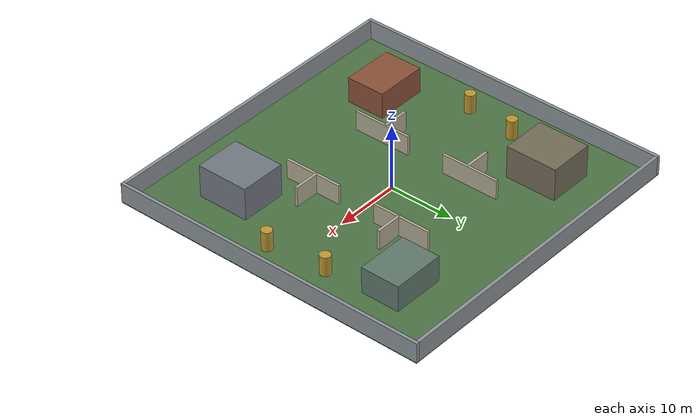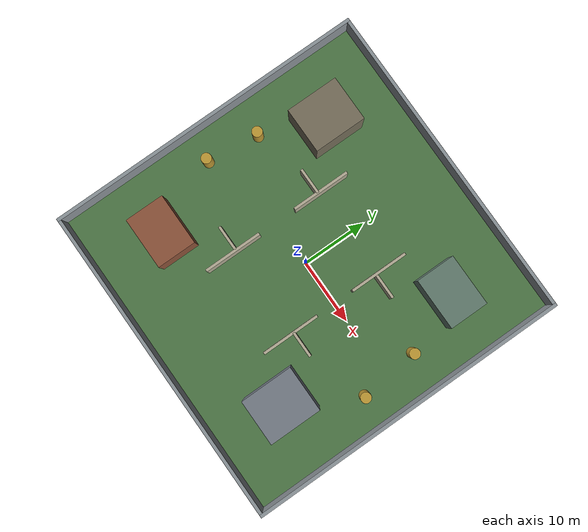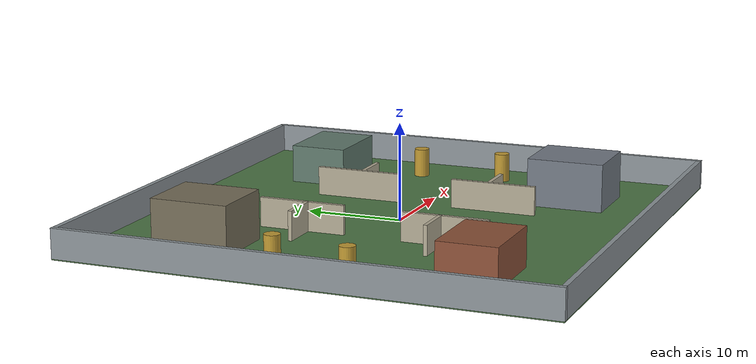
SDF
<?xml version="1.0"?>
<sdf version="1.6">
  <world name="two_uav_outdoor_50x50_v1">
    <gravity>0 0 -9.8066</gravity>
    <physics name="ode_1000hz" type="ode">
      <max_step_size>0.001</max_step_size>
      <real_time_factor>1.0</real_time_factor>
      <real_time_update_rate>1000</real_time_update_rate>
    </physics>
    <scene>
      <ambient>0.55 0.60 0.65 1</ambient>
      <background>0.70 0.82 0.95 1</background>
      <shadows>true</shadows>
      <sky><clouds><speed>0.2</speed></clouds></sky>
    </scene>
    <light name="sun" type="directional">
      <cast_shadows>true</cast_shadows>
      <pose>0 0 30 0 0 0</pose>
      <diffuse>0.9 0.88 0.82 1</diffuse>
      <specular>0.25 0.25 0.25 1</specular>
      <direction>-0.4 0.2 -0.9</direction>
    </light>

    <!-- 50 m x 50 m grass/concrete test pad. -->
    <model name="ground_50x50">
      <static>true</static>
      <link name="ground_link">
        <pose>0 0 -0.05 0 0 0</pose>
        <collision name="ground_collision">
          <geometry><box><size>50 50 0.1</size></box></geometry>
          <surface><friction><ode><mu>1.0</mu><mu2>1.0</mu2></ode></friction></surface>
        </collision>
        <visual name="ground_visual">
          <geometry><box><size>50 50 0.1</size></box></geometry>
          <material>
            <ambient>0.22 0.34 0.20 1</ambient>
            <diffuse>0.30 0.46 0.27 1</diffuse>
          </material>
        </visual>
      </link>
    </model>

    <!-- Closed 3 m perimeter; inner faces lie at +/-24.5 m. -->
    <model name="boundary_west"><static>true</static><pose>-24.75 0 1.5 0 0 0</pose><link name="link"><collision name="collision"><geometry><box><size>0.5 50 3</size></box></geometry></collision><visual name="visual"><geometry><box><size>0.5 50 3</size></box></geometry><material><diffuse>0.55 0.58 0.60 1</diffuse></material></visual></link></model>
    <model name="boundary_east"><static>true</static><pose>24.75 0 1.5 0 0 0</pose><link name="link"><collision name="collision"><geometry><box><size>0.5 50 3</size></box></geometry></collision><visual name="visual"><geometry><box><size>0.5 50 3</size></box></geometry><material><diffuse>0.55 0.58 0.60 1</diffuse></material></visual></link></model>
    <model name="boundary_south"><static>true</static><pose>0 -24.75 1.5 0 0 0</pose><link name="link"><collision name="collision"><geometry><box><size>49 0.5 3</size></box></geometry></collision><visual name="visual"><geometry><box><size>49 0.5 3</size></box></geometry><material><diffuse>0.55 0.58 0.60 1</diffuse></material></visual></link></model>
    <model name="boundary_north"><static>true</static><pose>0 24.75 1.5 0 0 0</pose><link name="link"><collision name="collision"><geometry><box><size>49 0.5 3</size></box></geometry></collision><visual name="visual"><geometry><box><size>49 0.5 3</size></box></geometry><material><diffuse>0.55 0.58 0.60 1</diffuse></material></visual></link></model>

    <!-- Four building-like blocks leave broad exterior lanes. -->
    <model name="building_sw"><static>true</static><pose>-15 -14 2.0 0 0 0</pose><link name="link"><collision name="collision"><geometry><box><size>8 6 4</size></box></geometry></collision><visual name="visual"><geometry><box><size>8 6 4</size></box></geometry><material><diffuse>0.55 0.32 0.22 1</diffuse></material></visual></link></model>
    <model name="building_se"><static>true</static><pose>14 -14 2.5 0 0 0</pose><link name="link"><collision name="collision"><geometry><box><size>7 8 5</size></box></geometry></collision><visual name="visual"><geometry><box><size>7 8 5</size></box></geometry><material><diffuse>0.45 0.48 0.52 1</diffuse></material></visual></link></model>
    <model name="building_nw"><static>true</static><pose>-15 14 2.5 0 0 0</pose><link name="link"><collision name="collision"><geometry><box><size>7 8 5</size></box></geometry></collision><visual name="visual"><geometry><box><size>7 8 5</size></box></geometry><material><diffuse>0.46 0.43 0.35 1</diffuse></material></visual></link></model>
    <model name="building_ne"><static>true</static><pose>15 14 2.0 0 0 0</pose><link name="link"><collision name="collision"><geometry><box><size>8 6 4</size></box></geometry></collision><visual name="visual"><geometry><box><size>8 6 4</size></box></geometry><material><diffuse>0.38 0.48 0.43 1</diffuse></material></visual></link></model>

    <!-- Split walls create gates and force cooperative route allocation. -->
    <model name="wall_west_upper"><static>true</static><pose>-7 7.5 1.5 0 0 0</pose><link name="link"><collision name="collision"><geometry><box><size>0.4 9 3</size></box></geometry></collision><visual name="visual"><geometry><box><size>0.4 9 3</size></box></geometry><material><diffuse>0.70 0.67 0.58 1</diffuse></material></visual></link></model>
    <model name="wall_west_lower"><static>true</static><pose>-7 -7.5 1.5 0 0 0</pose><link name="link"><collision name="collision"><geometry><box><size>0.4 9 3</size></box></geometry></collision><visual name="visual"><geometry><box><size>0.4 9 3</size></box></geometry><material><diffuse>0.70 0.67 0.58 1</diffuse></material></visual></link></model>
    <model name="wall_east_upper"><static>true</static><pose>7 7.5 1.5 0 0 0</pose><link name="link"><collision name="collision"><geometry><box><size>0.4 9 3</size></box></geometry></collision><visual name="visual"><geometry><box><size>0.4 9 3</size></box></geometry><material><diffuse>0.70 0.67 0.58 1</diffuse></material></visual></link></model>
    <model name="wall_east_lower"><static>true</static><pose>7 -7.5 1.5 0 0 0</pose><link name="link"><collision name="collision"><geometry><box><size>0.4 9 3</size></box></geometry></collision><visual name="visual"><geometry><box><size>0.4 9 3</size></box></geometry><material><diffuse>0.70 0.67 0.58 1</diffuse></material></visual></link></model>
    <model name="wall_north_left"><static>true</static><pose>-9 7 1.5 0 0 0</pose><link name="link"><collision name="collision"><geometry><box><size>4 0.4 3</size></box></geometry></collision><visual name="visual"><geometry><box><size>4 0.4 3</size></box></geometry><material><diffuse>0.70 0.67 0.58 1</diffuse></material></visual></link></model>
    <model name="wall_north_right"><static>true</static><pose>9 7 1.5 0 0 0</pose><link name="link"><collision name="collision"><geometry><box><size>4 0.4 3</size></box></geometry></collision><visual name="visual"><geometry><box><size>4 0.4 3</size></box></geometry><material><diffuse>0.70 0.67 0.58 1</diffuse></material></visual></link></model>
    <model name="wall_south_left"><static>true</static><pose>-9 -7 1.5 0 0 0</pose><link name="link"><collision name="collision"><geometry><box><size>4 0.4 3</size></box></geometry></collision><visual name="visual"><geometry><box><size>4 0.4 3</size></box></geometry><material><diffuse>0.70 0.67 0.58 1</diffuse></material></visual></link></model>
    <model name="wall_south_right"><static>true</static><pose>9 -7 1.5 0 0 0</pose><link name="link"><collision name="collision"><geometry><box><size>4 0.4 3</size></box></geometry></collision><visual name="visual"><geometry><box><size>4 0.4 3</size></box></geometry><material><diffuse>0.70 0.67 0.58 1</diffuse></material></visual></link></model>

    <!-- Scattered columns exercise near-field avoidance without blocking gates. -->
    <model name="column_w1"><static>true</static><pose>-20 -3 1.5 0 0 0</pose><link name="link"><collision name="collision"><geometry><cylinder><radius>0.8</radius><length>3</length></cylinder></geometry></collision><visual name="visual"><geometry><cylinder><radius>0.8</radius><length>3</length></cylinder></geometry><material><diffuse>0.75 0.60 0.20 1</diffuse></material></visual></link></model>
    <model name="column_w2"><static>true</static><pose>-19 5 1.5 0 0 0</pose><link name="link"><collision name="collision"><geometry><cylinder><radius>0.8</radius><length>3</length></cylinder></geometry></collision><visual name="visual"><geometry><cylinder><radius>0.8</radius><length>3</length></cylinder></geometry><material><diffuse>0.75 0.60 0.20 1</diffuse></material></visual></link></model>
    <model name="column_e1"><static>true</static><pose>20 -4 1.5 0 0 0</pose><link name="link"><collision name="collision"><geometry><cylinder><radius>0.8</radius><length>3</length></cylinder></geometry></collision><visual name="visual"><geometry><cylinder><radius>0.8</radius><length>3</length></cylinder></geometry><material><diffuse>0.75 0.60 0.20 1</diffuse></material></visual></link></model>
    <model name="column_e2"><static>true</static><pose>19 5 1.5 0 0 0</pose><link name="link"><collision name="collision"><geometry><cylinder><radius>0.8</radius><length>3</length></cylinder></geometry></collision><visual name="visual"><geometry><cylinder><radius>0.8</radius><length>3</length></cylinder></geometry><material><diffuse>0.75 0.60 0.20 1</diffuse></material></visual></link></model>
  </world>
</sdf>
